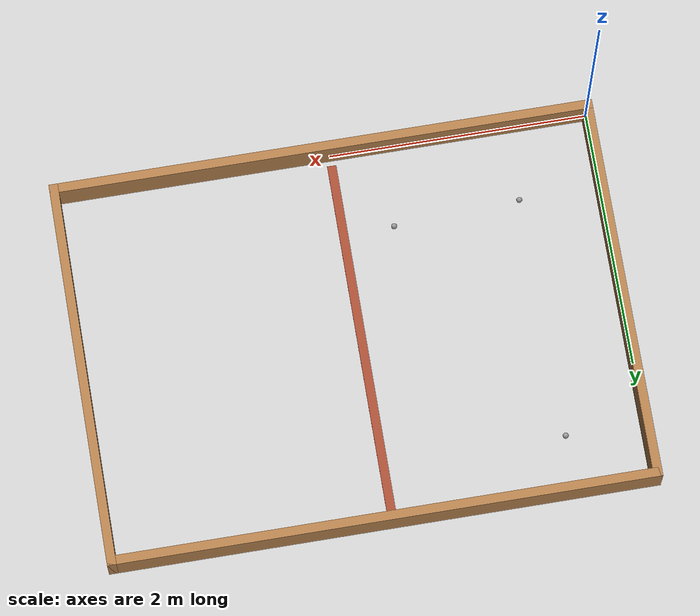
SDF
<sdf version="1.7">
 <world name="default">
  <light name="sun" type="directional">
   <pose>0 0 10 0 -0 0</pose>
   <diffuse>0.8 0.8 0.8 1</diffuse>
   <specular>0.2 0.2 0.2 1</specular>
   <attenuation>
    <range>1000</range>
    <constant>0.9</constant>
    <linear>0.01</linear>
    <quadratic>0.001</quadratic>
   </attenuation>
   <direction>-0.5 0.1 -0.9</direction>
   <spot><inner_angle>0</inner_angle><outer_angle>0</outer_angle><falloff>0</falloff></spot>
  </light>
  <model name="ground_plane">
   <static>1</static>
   <link name="link">
    <collision name="collision">
     <geometry><plane><normal>0 0 1</normal><size>100 100</size></plane></geometry>
     <surface>
      <contact><collide_bitmask>65535</collide_bitmask></contact>
      <friction><ode><mu>100</mu><mu2>50</mu2></ode></friction>
     </surface>
    </collision>
    <visual name="visual">
     <cast_shadows>0</cast_shadows>
     <geometry><plane><normal>0 0 1</normal><size>100 100</size></plane></geometry>
     <material>
      <script><uri>file://media/materials/scripts/gazebo.material</uri><name>Gazebo/Grey</name></script>
     </material>
    </visual>
   </link>
  </model>
  <gravity>0 0 -9.8</gravity>
  <magnetic_field>6e-06 2.3e-05 -4.2e-05</magnetic_field>
  <atmosphere type="adiabatic"/>
  <physics type="ode">
   <max_step_size>0.001</max_step_size>
   <real_time_factor>1</real_time_factor>
   <real_time_update_rate>1000</real_time_update_rate>
  </physics>
  <scene><ambient>0.4 0.4 0.4 1</ambient><background>0.7 0.7 0.7 1</background><shadows>1</shadows></scene>
  <spherical_coordinates>
   <surface_model>EARTH_WGS84</surface_model>
   <latitude_deg>0</latitude_deg>
   <longitude_deg>0</longitude_deg>
   <elevation>0</elevation>
   <heading_deg>0</heading_deg>
  </spherical_coordinates>
  <model name="DEBI_World_old">
   <link name="Wall_17">
    <pose>0 -1.465 0 0 -0 0</pose>
    <visual name="Wall_17_Visual">
     <pose>0 0 0.155 0 -0 0</pose>
     <geometry><box><size>4.2 0.07 0.31</size></box></geometry>
     <material>
      <script><uri>file://media/materials/scripts/gazebo.material</uri><name>Gazebo/Wood</name></script>
      <ambient>1 1 1 1</ambient>
      <shader type="pixel"/>
     </material>
     <meta><layer>0</layer></meta>
    </visual>
    <collision name="Wall_17_Collision">
     <pose>0 0 0.155 0 -0 0</pose>
     <geometry><box><size>4.2 0.07 0.31</size></box></geometry>
     <surface>
      <friction>
       <ode><mu>1</mu><mu2>1</mu2><fdir1>0 0 0</fdir1><slip1>0</slip1><slip2>0</slip2></ode>
       <torsional>
        <coefficient>1</coefficient>
        <patch_radius>0</patch_radius>
        <surface_radius>0</surface_radius>
        <use_patch_radius>1</use_patch_radius>
        <ode><slip>0</slip></ode>
       </torsional>
      </friction>
      <bounce><restitution_coefficient>0</restitution_coefficient><threshold>1e+06</threshold></bounce>
      <contact>
       <collide_without_contact>0</collide_without_contact>
       <collide_without_contact_bitmask>1</collide_without_contact_bitmask>
       <collide_bitmask>1</collide_bitmask>
       <ode>
        <soft_cfm>0</soft_cfm>
        <soft_erp>0.2</soft_erp>
        <kp>1e+13</kp>
        <kd>1</kd>
        <max_vel>0.01</max_vel>
        <min_depth>0</min_depth>
       </ode>
       <bullet>
        <split_impulse>1</split_impulse>
        <split_impulse_penetration_threshold>-0.01</split_impulse_penetration_threshold>
        <soft_cfm>0</soft_cfm>
        <soft_erp>0.2</soft_erp>
        <kp>1e+13</kp>
        <kd>1</kd>
       </bullet>
      </contact>
     </surface>
    </collision>
   </link>
   <link name="Wall_20">
    <pose>-2.065 0 0 0 -0 1.5708</pose>
    <visual name="Wall_20_Visual">
     <pose>0 0 0.155 0 -0 0</pose>
     <geometry><box><size>3 0.07 0.31</size></box></geometry>
     <material>
      <script><uri>file://media/materials/scripts/gazebo.material</uri><name>Gazebo/Wood</name></script>
      <ambient>1 1 1 1</ambient>
      <shader type="pixel"/>
     </material>
     <meta><layer>0</layer></meta>
    </visual>
    <collision name="Wall_20_Collision">
     <pose>0 0 0.155 0 -0 0</pose>
     <geometry><box><size>3 0.07 0.31</size></box></geometry>
     <surface>
      <friction>
       <ode><mu>1</mu><mu2>1</mu2><fdir1>0 0 0</fdir1><slip1>0</slip1><slip2>0</slip2></ode>
       <torsional>
        <coefficient>1</coefficient>
        <patch_radius>0</patch_radius>
        <surface_radius>0</surface_radius>
        <use_patch_radius>1</use_patch_radius>
        <ode><slip>0</slip></ode>
       </torsional>
      </friction>
      <bounce><restitution_coefficient>0</restitution_coefficient><threshold>1e+06</threshold></bounce>
      <contact>
       <collide_without_contact>0</collide_without_contact>
       <collide_without_contact_bitmask>1</collide_without_contact_bitmask>
       <collide_bitmask>1</collide_bitmask>
       <ode>
        <soft_cfm>0</soft_cfm>
        <soft_erp>0.2</soft_erp>
        <kp>1e+13</kp>
        <kd>1</kd>
        <max_vel>0.01</max_vel>
        <min_depth>0</min_depth>
       </ode>
       <bullet>
        <split_impulse>1</split_impulse>
        <split_impulse_penetration_threshold>-0.01</split_impulse_penetration_threshold>
        <soft_cfm>0</soft_cfm>
        <soft_erp>0.2</soft_erp>
        <kp>1e+13</kp>
        <kd>1</kd>
       </bullet>
      </contact>
     </surface>
    </collision>
   </link>
   <link name="Wall_22">
    <pose>0 1.465 0 0 -0 0</pose>
    <visual name="Wall_22_Visual">
     <pose>0 0 0.155 0 -0 0</pose>
     <geometry><box><size>4.2 0.07 0.31</size></box></geometry>
     <material>
      <script><uri>file://media/materials/scripts/gazebo.material</uri><name>Gazebo/Wood</name></script>
      <ambient>1 1 1 1</ambient>
      <shader type="pixel"/>
     </material>
     <meta><layer>0</layer></meta>
    </visual>
    <collision name="Wall_22_Collision">
     <pose>0 0 0.155 0 -0 0</pose>
     <geometry><box><size>4.2 0.07 0.31</size></box></geometry>
     <surface>
      <friction>
       <ode><mu>1</mu><mu2>1</mu2><fdir1>0 0 0</fdir1><slip1>0</slip1><slip2>0</slip2></ode>
       <torsional>
        <coefficient>1</coefficient>
        <patch_radius>0</patch_radius>
        <surface_radius>0</surface_radius>
        <use_patch_radius>1</use_patch_radius>
        <ode><slip>0</slip></ode>
       </torsional>
      </friction>
      <bounce><restitution_coefficient>0</restitution_coefficient><threshold>1e+06</threshold></bounce>
      <contact>
       <collide_without_contact>0</collide_without_contact>
       <collide_without_contact_bitmask>1</collide_without_contact_bitmask>
       <collide_bitmask>1</collide_bitmask>
       <ode>
        <soft_cfm>0</soft_cfm>
        <soft_erp>0.2</soft_erp>
        <kp>1e+13</kp>
        <kd>1</kd>
        <max_vel>0.01</max_vel>
        <min_depth>0</min_depth>
       </ode>
       <bullet>
        <split_impulse>1</split_impulse>
        <split_impulse_penetration_threshold>-0.01</split_impulse_penetration_threshold>
        <soft_cfm>0</soft_cfm>
        <soft_erp>0.2</soft_erp>
        <kp>1e+13</kp>
        <kd>1</kd>
       </bullet>
      </contact>
     </surface>
    </collision>
   </link>
   <link name="Wall_24">
    <pose>2.065 0 0 0 0 -1.5708</pose>
    <visual name="Wall_24_Visual">
     <pose>0 0 0.155 0 -0 0</pose>
     <geometry><box><size>3 0.07 0.31</size></box></geometry>
     <material>
      <script><uri>file://media/materials/scripts/gazebo.material</uri><name>Gazebo/Wood</name></script>
      <ambient>1 1 1 1</ambient>
      <shader type="pixel"/>
     </material>
     <meta><layer>0</layer></meta>
    </visual>
    <collision name="Wall_24_Collision">
     <pose>0 0 0.155 0 -0 0</pose>
     <geometry><box><size>3 0.07 0.31</size></box></geometry>
     <surface>
      <friction>
       <ode><mu>1</mu><mu2>1</mu2><fdir1>0 0 0</fdir1><slip1>0</slip1><slip2>0</slip2></ode>
       <torsional>
        <coefficient>1</coefficient>
        <patch_radius>0</patch_radius>
        <surface_radius>0</surface_radius>
        <use_patch_radius>1</use_patch_radius>
        <ode><slip>0</slip></ode>
       </torsional>
      </friction>
      <bounce><restitution_coefficient>0</restitution_coefficient><threshold>1e+06</threshold></bounce>
      <contact>
       <collide_without_contact>0</collide_without_contact>
       <collide_without_contact_bitmask>1</collide_without_contact_bitmask>
       <collide_bitmask>1</collide_bitmask>
       <ode>
        <soft_cfm>0</soft_cfm>
        <soft_erp>0.2</soft_erp>
        <kp>1e+13</kp>
        <kd>1</kd>
        <max_vel>0.01</max_vel>
        <min_depth>0</min_depth>
       </ode>
       <bullet>
        <split_impulse>1</split_impulse>
        <split_impulse_penetration_threshold>-0.01</split_impulse_penetration_threshold>
        <soft_cfm>0</soft_cfm>
        <soft_erp>0.2</soft_erp>
        <kp>1e+13</kp>
        <kd>1</kd>
       </bullet>
      </contact>
     </surface>
    </collision>
   </link>
   <link name="Wall_26">
    <pose>-0.065 -0.0005 0 0 0 -1.5708</pose>
    <inertial>
     <mass>1</mass>
     <inertia><ixx>1</ixx><ixy>0</ixy><ixz>0</ixz><iyy>1</iyy><iyz>0</iyz><izz>1</izz></inertia>
    </inertial>
    <visual name="Wall_26_Visual">
     <pose>0 0 0.0025 0 -0 0</pose>
     <geometry><box><size>2.781 0.07 0.005</size></box></geometry>
     <material>
      <script><uri>file://media/materials/scripts/gazebo.material</uri><name>Gazebo/Bricks</name></script>
      <ambient>1 1 1 1</ambient>
      <shader type="pixel"><normal_map>__default__</normal_map></shader>
      <diffuse>1 1 1 1</diffuse>
      <specular>0.2 0.2 0.2 1</specular>
      <emissive>0 0 0 1</emissive>
     </material>
     <meta><layer>0</layer></meta>
    </visual>
    <collision name="Wall_26_Collision">
     <pose>0 0 0.0025 0 -0 0</pose>
     <geometry><box><size>0 0 0</size></box></geometry>
     <surface>
      <friction>
       <ode><mu>1</mu><mu2>1</mu2><fdir1>0 0 0</fdir1><slip1>0</slip1><slip2>0</slip2></ode>
       <torsional>
        <coefficient>1</coefficient>
        <patch_radius>0</patch_radius>
        <surface_radius>0</surface_radius>
        <use_patch_radius>1</use_patch_radius>
        <ode><slip>0</slip></ode>
       </torsional>
      </friction>
      <bounce><restitution_coefficient>0</restitution_coefficient><threshold>1e+06</threshold></bounce>
      <contact>
       <collide_without_contact>0</collide_without_contact>
       <collide_without_contact_bitmask>1</collide_without_contact_bitmask>
       <collide_bitmask>1</collide_bitmask>
       <ode>
        <soft_cfm>0</soft_cfm>
        <soft_erp>0.2</soft_erp>
        <kp>1e+13</kp>
        <kd>1</kd>
        <max_vel>0.01</max_vel>
        <min_depth>0</min_depth>
       </ode>
       <bullet>
        <split_impulse>1</split_impulse>
        <split_impulse_penetration_threshold>-0.01</split_impulse_penetration_threshold>
        <soft_cfm>0</soft_cfm>
        <soft_erp>0.2</soft_erp>
        <kp>1e+13</kp>
        <kd>1</kd>
       </bullet>
      </contact>
     </surface>
    </collision>
   </link>
   <static>1</static>
   <pose>2.065 1.465 0 0 -0 0</pose>
  </model>
  <model name="Ball">
   <link name="link_0">
    <inertial>
     <mass>0.005</mass>
     <inertia>
      <ixx>1.01e-06</ixx>
      <ixy>0</ixy>
      <ixz>0</ixz>
      <iyy>1.01e-06</iyy>
      <iyz>0</iyz>
      <izz>1.01e-06</izz>
     </inertia>
    </inertial>
    <visual name="visual">
     <geometry><sphere><radius>0.0225</radius></sphere></geometry>
     <material>
      <lighting>1</lighting>
      <script><uri>file://media/materials/scripts/gazebo.material</uri><name>Gazebo/Grey</name></script>
      <shader type="pixel"><normal_map>__default__</normal_map></shader>
      <ambient>0.3 0.3 0.3 1</ambient>
      <diffuse>0.7 0.7 0.7 1</diffuse>
      <specular>0.01 0.01 0.01 1</specular>
      <emissive>0 0 0 1</emissive>
     </material>
    </visual>
    <collision name="collision">
     <geometry><sphere><radius>0.0225</radius></sphere></geometry>
     <surface>
      <friction>
       <ode><mu>15</mu><mu2>15</mu2><fdir1>1 1 0</fdir1><slip1>0</slip1><slip2>0</slip2></ode>
       <torsional>
        <coefficient>5</coefficient>
        <patch_radius>0</patch_radius>
        <surface_radius>0</surface_radius>
        <use_patch_radius>1</use_patch_radius>
        <ode><slip>0</slip></ode>
       </torsional>
      </friction>
      <bounce><restitution_coefficient>0</restitution_coefficient><threshold>1e+06</threshold></bounce>
      <contact>
       <collide_without_contact>0</collide_without_contact>
       <collide_without_contact_bitmask>1</collide_without_contact_bitmask>
       <collide_bitmask>1</collide_bitmask>
       <ode>
        <soft_cfm>0</soft_cfm>
        <soft_erp>0.2</soft_erp>
        <kp>1e+13</kp>
        <kd>1</kd>
        <max_vel>0.01</max_vel>
        <min_depth>0</min_depth>
       </ode>
       <bullet>
        <split_impulse>1</split_impulse>
        <split_impulse_penetration_threshold>-0.01</split_impulse_penetration_threshold>
        <soft_cfm>0</soft_cfm>
        <soft_erp>0.2</soft_erp>
        <kp>1e+13</kp>
        <kd>1</kd>
       </bullet>
      </contact>
     </surface>
    </collision>
   </link>
   <static>0</static>
   <pose>0.625094 0.584941 0.0225 0 -0 0</pose>
  </model>
  <model name="Ball_0">
   <link name="link_0">
    <inertial>
     <mass>0.005</mass>
     <inertia>
      <ixx>1.01e-06</ixx>
      <ixy>0</ixy>
      <ixz>0</ixz>
      <iyy>1.01e-06</iyy>
      <iyz>0</iyz>
      <izz>1.01e-06</izz>
     </inertia>
    </inertial>
    <visual name="visual">
     <geometry><sphere><radius>0.0225</radius></sphere></geometry>
     <material>
      <lighting>1</lighting>
      <script><uri>file://media/materials/scripts/gazebo.material</uri><name>Gazebo/Grey</name></script>
      <shader type="pixel"><normal_map>__default__</normal_map></shader>
      <ambient>0.3 0.3 0.3 1</ambient>
      <diffuse>0.7 0.7 0.7 1</diffuse>
      <specular>0.01 0.01 0.01 1</specular>
      <emissive>0 0 0 1</emissive>
     </material>
    </visual>
    <collision name="collision">
     <geometry><sphere><radius>0.0225</radius></sphere></geometry>
     <surface>
      <friction>
       <ode><mu>15</mu><mu2>15</mu2><fdir1>1 1 0</fdir1><slip1>0</slip1><slip2>0</slip2></ode>
       <torsional>
        <coefficient>5</coefficient>
        <patch_radius>0</patch_radius>
        <surface_radius>0</surface_radius>
        <use_patch_radius>1</use_patch_radius>
        <ode><slip>0</slip></ode>
       </torsional>
      </friction>
      <bounce><restitution_coefficient>0</restitution_coefficient><threshold>1e+06</threshold></bounce>
      <contact>
       <collide_without_contact>0</collide_without_contact>
       <collide_without_contact_bitmask>1</collide_without_contact_bitmask>
       <collide_bitmask>1</collide_bitmask>
       <ode>
        <soft_cfm>0</soft_cfm>
        <soft_erp>0.2</soft_erp>
        <kp>1e+13</kp>
        <kd>1</kd>
        <max_vel>0.01</max_vel>
        <min_depth>0</min_depth>
       </ode>
       <bullet>
        <split_impulse>1</split_impulse>
        <split_impulse_penetration_threshold>-0.01</split_impulse_penetration_threshold>
        <soft_cfm>0</soft_cfm>
        <soft_erp>0.2</soft_erp>
        <kp>1e+13</kp>
        <kd>1</kd>
       </bullet>
      </contact>
     </surface>
    </collision>
   </link>
   <static>0</static>
   <pose>0.603377 2.47619 0.0225 0 -0 0</pose>
  </model>
  <model name="Ball_1">
   <link name="link_0">
    <inertial>
     <mass>0.005</mass>
     <inertia>
      <ixx>1.01e-06</ixx>
      <ixy>0</ixy>
      <ixz>0</ixz>
      <iyy>1.01e-06</iyy>
      <iyz>0</iyz>
      <izz>1.01e-06</izz>
     </inertia>
    </inertial>
    <visual name="visual">
     <geometry><sphere><radius>0.0225</radius></sphere></geometry>
     <material>
      <lighting>1</lighting>
      <script><uri>file://media/materials/scripts/gazebo.material</uri><name>Gazebo/Grey</name></script>
      <shader type="pixel"><normal_map>__default__</normal_map></shader>
      <ambient>0.3 0.3 0.3 1</ambient>
      <diffuse>0.7 0.7 0.7 1</diffuse>
      <specular>0.01 0.01 0.01 1</specular>
      <emissive>0 0 0 1</emissive>
     </material>
    </visual>
    <collision name="collision">
     <geometry><sphere><radius>0.0225</radius></sphere></geometry>
     <surface>
      <friction>
       <ode><mu>15</mu><mu2>15</mu2><fdir1>1 1 0</fdir1><slip1>0</slip1><slip2>0</slip2></ode>
       <torsional>
        <coefficient>5</coefficient>
        <patch_radius>0</patch_radius>
        <surface_radius>0</surface_radius>
        <use_patch_radius>1</use_patch_radius>
        <ode><slip>0</slip></ode>
       </torsional>
      </friction>
      <bounce><restitution_coefficient>0</restitution_coefficient><threshold>1e+06</threshold></bounce>
      <contact>
       <collide_without_contact>0</collide_without_contact>
       <collide_without_contact_bitmask>1</collide_without_contact_bitmask>
       <collide_bitmask>1</collide_bitmask>
       <ode>
        <soft_cfm>0</soft_cfm>
        <soft_erp>0.2</soft_erp>
        <kp>1e+13</kp>
        <kd>1</kd>
        <max_vel>0.01</max_vel>
        <min_depth>0</min_depth>
       </ode>
       <bullet>
        <split_impulse>1</split_impulse>
        <split_impulse_penetration_threshold>-0.01</split_impulse_penetration_threshold>
        <soft_cfm>0</soft_cfm>
        <soft_erp>0.2</soft_erp>
        <kp>1e+13</kp>
        <kd>1</kd>
       </bullet>
      </contact>
     </surface>
    </collision>
   </link>
   <static>0</static>
   <pose>1.60661 0.635482 0.0225 0 -0 0</pose>
  </model>
 </world>
</sdf>
